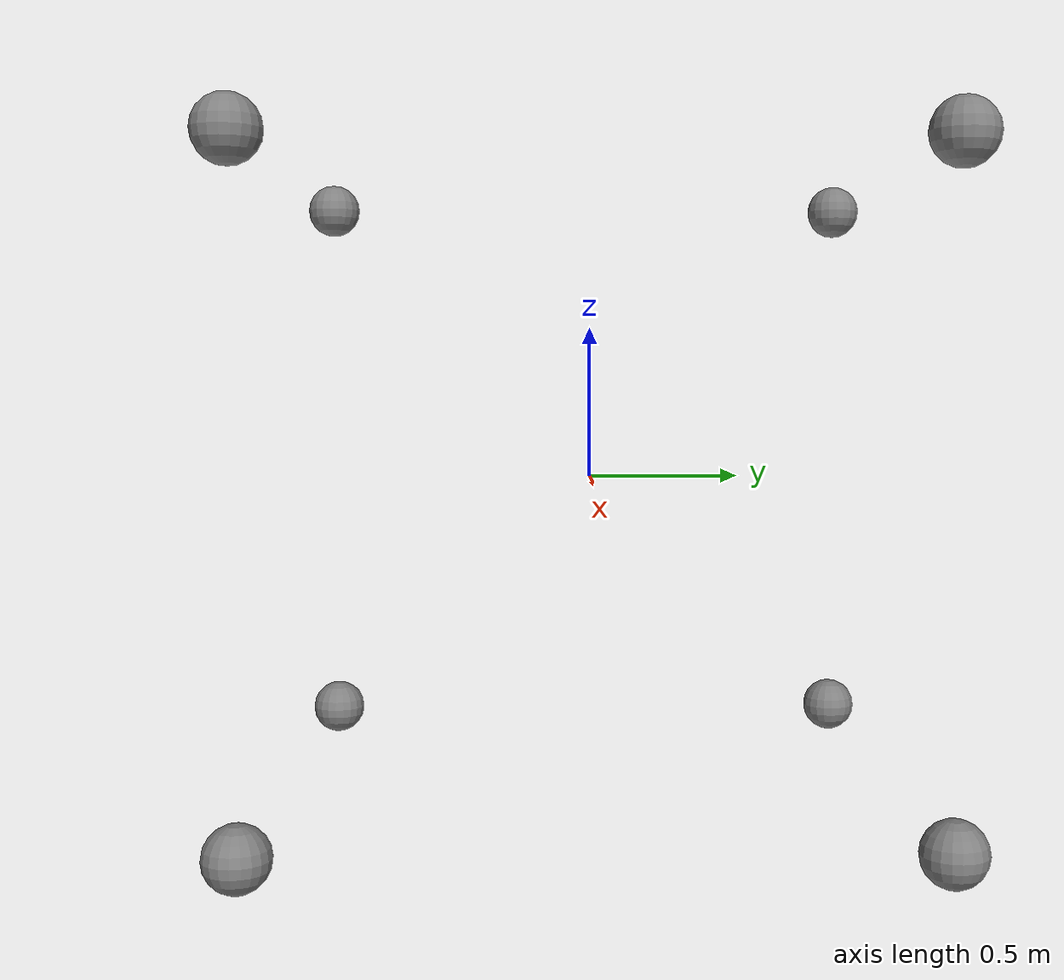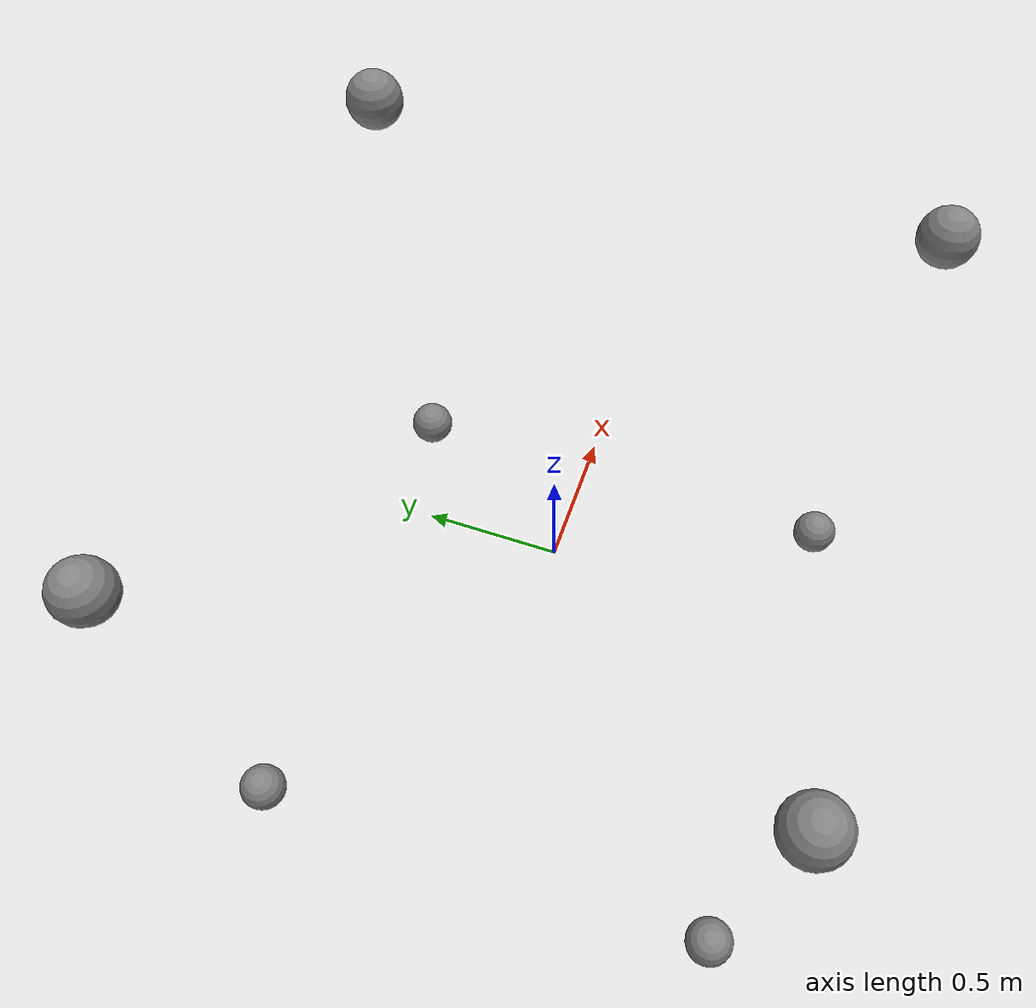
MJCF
<mujoco model="Static Sphere">
  <worldbody>
    <geom size="0.1" pos="-1.0 -1.0 -1.0 "/>
    <geom size="0.1" pos="-1.0 -1.0 1.0 "/>
    <geom size="0.1" pos="-1.0 1.0 -1.0 "/>
    <geom size="0.1" pos="-1.0 1.0 1.0 "/>
    <geom size="0.1" pos="1.0 -1.0 -1.0 "/>
    <geom size="0.1" pos="1.0 -1.0 1.0 "/>
    <geom size="0.1" pos="1.0 1.0 -1.0 "/>
    <geom size="0.1" pos="1.0 1.0 1.0 "/>
  </worldbody>
</mujoco>
